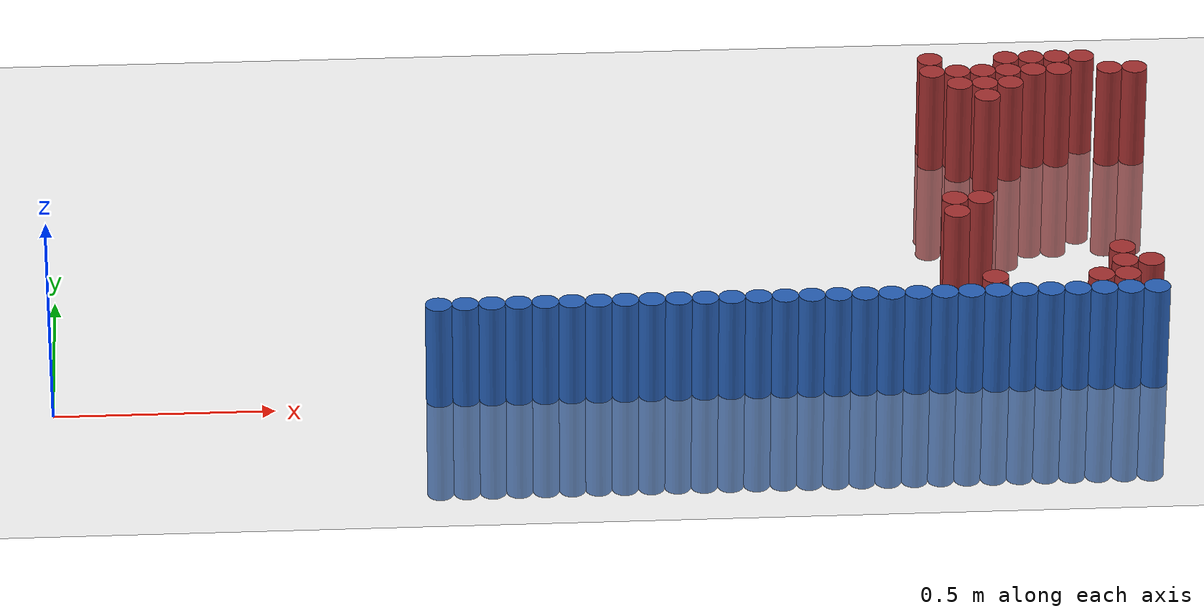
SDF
<sdf version="1.6">
 <world name="default">
  <model name="ground_plane">
   <static>1</static>
   <link name="link">
    <collision name="collision">
     <geometry><plane><normal>0 0 1</normal><size>100 100</size></plane></geometry>
     <surface><friction><ode><mu>100</mu><mu2>50</mu2></ode></friction></surface>
    </collision>
    <visual name="visual">
     <cast_shadows>0</cast_shadows>
     <geometry><plane><normal>0 0 1</normal><size>100 100</size></plane></geometry>
     <material>
      <script><uri>file://media/materials/scripts/gazebo.material</uri><name>Gazebo/Grey</name></script>
     </material>
    </visual>
   </link>
  </model>
  <model name="unit_cylinder_55">
   <static>1</static>
   <pose>0.870000 0.030000 0.000000 0.000000 0.000000 0.000000</pose>
   <link name="link">
    <inertial>
     <mass>1</mass>
     <inertia><ixx>0.145833</ixx><ixy>0</ixy><ixz>0</ixz><iyy>0.145833</iyy><iyz>0</iyz><izz>0.125</izz></inertia>
    </inertial>
    <collision name="collision">
     <geometry><cylinder><radius>0.030000</radius><length>0.5</length></cylinder></geometry>
    </collision>
    <visual name="visual">
     <geometry><cylinder><radius>0.030000</radius><length>0.5</length></cylinder></geometry>
     <material>
      <ambient>0.152000 0.379000 0.720000 1</ambient>
      <diffuse>0.152000 0.379000 0.720000 1</diffuse>
     </material>
     <material>
      <script><name>Gazebo/Grey</name><uri>file://media/materials/scripts/gazebo.material</uri></script>
     </material>
    </visual>
   </link>
  </model>
  <model name="unit_cylinder_57">
   <static>1</static>
   <pose>0.930000 0.030000 0.000000 0.000000 0.000000 0.000000</pose>
   <link name="link">
    <inertial>
     <mass>1</mass>
     <inertia><ixx>0.145833</ixx><ixy>0</ixy><ixz>0</ixz><iyy>0.145833</iyy><iyz>0</iyz><izz>0.125</izz></inertia>
    </inertial>
    <collision name="collision">
     <geometry><cylinder><radius>0.030000</radius><length>0.5</length></cylinder></geometry>
    </collision>
    <visual name="visual">
     <geometry><cylinder><radius>0.030000</radius><length>0.5</length></cylinder></geometry>
     <material>
      <ambient>0.152000 0.379000 0.720000 1</ambient>
      <diffuse>0.152000 0.379000 0.720000 1</diffuse>
     </material>
     <material>
      <script><name>Gazebo/Grey</name><uri>file://media/materials/scripts/gazebo.material</uri></script>
     </material>
    </visual>
   </link>
  </model>
  <model name="unit_cylinder_59">
   <static>1</static>
   <pose>0.990000 0.030000 0.000000 0.000000 0.000000 0.000000</pose>
   <link name="link">
    <inertial>
     <mass>1</mass>
     <inertia><ixx>0.145833</ixx><ixy>0</ixy><ixz>0</ixz><iyy>0.145833</iyy><iyz>0</iyz><izz>0.125</izz></inertia>
    </inertial>
    <collision name="collision">
     <geometry><cylinder><radius>0.030000</radius><length>0.5</length></cylinder></geometry>
    </collision>
    <visual name="visual">
     <geometry><cylinder><radius>0.030000</radius><length>0.5</length></cylinder></geometry>
     <material>
      <ambient>0.152000 0.379000 0.720000 1</ambient>
      <diffuse>0.152000 0.379000 0.720000 1</diffuse>
     </material>
     <material>
      <script><name>Gazebo/Grey</name><uri>file://media/materials/scripts/gazebo.material</uri></script>
     </material>
    </visual>
   </link>
  </model>
  <model name="unit_cylinder_61">
   <static>1</static>
   <pose>1.050000 0.030000 0.000000 0.000000 0.000000 0.000000</pose>
   <link name="link">
    <inertial>
     <mass>1</mass>
     <inertia><ixx>0.145833</ixx><ixy>0</ixy><ixz>0</ixz><iyy>0.145833</iyy><iyz>0</iyz><izz>0.125</izz></inertia>
    </inertial>
    <collision name="collision">
     <geometry><cylinder><radius>0.030000</radius><length>0.5</length></cylinder></geometry>
    </collision>
    <visual name="visual">
     <geometry><cylinder><radius>0.030000</radius><length>0.5</length></cylinder></geometry>
     <material>
      <ambient>0.152000 0.379000 0.720000 1</ambient>
      <diffuse>0.152000 0.379000 0.720000 1</diffuse>
     </material>
     <material>
      <script><name>Gazebo/Grey</name><uri>file://media/materials/scripts/gazebo.material</uri></script>
     </material>
    </visual>
   </link>
  </model>
  <model name="unit_cylinder_63">
   <static>1</static>
   <pose>1.110000 0.030000 0.000000 0.000000 0.000000 0.000000</pose>
   <link name="link">
    <inertial>
     <mass>1</mass>
     <inertia><ixx>0.145833</ixx><ixy>0</ixy><ixz>0</ixz><iyy>0.145833</iyy><iyz>0</iyz><izz>0.125</izz></inertia>
    </inertial>
    <collision name="collision">
     <geometry><cylinder><radius>0.030000</radius><length>0.5</length></cylinder></geometry>
    </collision>
    <visual name="visual">
     <geometry><cylinder><radius>0.030000</radius><length>0.5</length></cylinder></geometry>
     <material>
      <ambient>0.152000 0.379000 0.720000 1</ambient>
      <diffuse>0.152000 0.379000 0.720000 1</diffuse>
     </material>
     <material>
      <script><name>Gazebo/Grey</name><uri>file://media/materials/scripts/gazebo.material</uri></script>
     </material>
    </visual>
   </link>
  </model>
  <model name="unit_cylinder_65">
   <static>1</static>
   <pose>1.170000 0.030000 0.000000 0.000000 0.000000 0.000000</pose>
   <link name="link">
    <inertial>
     <mass>1</mass>
     <inertia><ixx>0.145833</ixx><ixy>0</ixy><ixz>0</ixz><iyy>0.145833</iyy><iyz>0</iyz><izz>0.125</izz></inertia>
    </inertial>
    <collision name="collision">
     <geometry><cylinder><radius>0.030000</radius><length>0.5</length></cylinder></geometry>
    </collision>
    <visual name="visual">
     <geometry><cylinder><radius>0.030000</radius><length>0.5</length></cylinder></geometry>
     <material>
      <ambient>0.152000 0.379000 0.720000 1</ambient>
      <diffuse>0.152000 0.379000 0.720000 1</diffuse>
     </material>
     <material>
      <script><name>Gazebo/Grey</name><uri>file://media/materials/scripts/gazebo.material</uri></script>
     </material>
    </visual>
   </link>
  </model>
  <model name="unit_cylinder_67">
   <static>1</static>
   <pose>1.230000 0.030000 0.000000 0.000000 0.000000 0.000000</pose>
   <link name="link">
    <inertial>
     <mass>1</mass>
     <inertia><ixx>0.145833</ixx><ixy>0</ixy><ixz>0</ixz><iyy>0.145833</iyy><iyz>0</iyz><izz>0.125</izz></inertia>
    </inertial>
    <collision name="collision">
     <geometry><cylinder><radius>0.030000</radius><length>0.5</length></cylinder></geometry>
    </collision>
    <visual name="visual">
     <geometry><cylinder><radius>0.030000</radius><length>0.5</length></cylinder></geometry>
     <material>
      <ambient>0.152000 0.379000 0.720000 1</ambient>
      <diffuse>0.152000 0.379000 0.720000 1</diffuse>
     </material>
     <material>
      <script><name>Gazebo/Grey</name><uri>file://media/materials/scripts/gazebo.material</uri></script>
     </material>
    </visual>
   </link>
  </model>
  <model name="unit_cylinder_69">
   <static>1</static>
   <pose>1.290000 0.030000 0.000000 0.000000 0.000000 0.000000</pose>
   <link name="link">
    <inertial>
     <mass>1</mass>
     <inertia><ixx>0.145833</ixx><ixy>0</ixy><ixz>0</ixz><iyy>0.145833</iyy><iyz>0</iyz><izz>0.125</izz></inertia>
    </inertial>
    <collision name="collision">
     <geometry><cylinder><radius>0.030000</radius><length>0.5</length></cylinder></geometry>
    </collision>
    <visual name="visual">
     <geometry><cylinder><radius>0.030000</radius><length>0.5</length></cylinder></geometry>
     <material>
      <ambient>0.152000 0.379000 0.720000 1</ambient>
      <diffuse>0.152000 0.379000 0.720000 1</diffuse>
     </material>
     <material>
      <script><name>Gazebo/Grey</name><uri>file://media/materials/scripts/gazebo.material</uri></script>
     </material>
    </visual>
   </link>
  </model>
  <model name="unit_cylinder_71">
   <static>1</static>
   <pose>1.350000 0.030000 0.000000 0.000000 0.000000 0.000000</pose>
   <link name="link">
    <inertial>
     <mass>1</mass>
     <inertia><ixx>0.145833</ixx><ixy>0</ixy><ixz>0</ixz><iyy>0.145833</iyy><iyz>0</iyz><izz>0.125</izz></inertia>
    </inertial>
    <collision name="collision">
     <geometry><cylinder><radius>0.030000</radius><length>0.5</length></cylinder></geometry>
    </collision>
    <visual name="visual">
     <geometry><cylinder><radius>0.030000</radius><length>0.5</length></cylinder></geometry>
     <material>
      <ambient>0.152000 0.379000 0.720000 1</ambient>
      <diffuse>0.152000 0.379000 0.720000 1</diffuse>
     </material>
     <material>
      <script><name>Gazebo/Grey</name><uri>file://media/materials/scripts/gazebo.material</uri></script>
     </material>
    </visual>
   </link>
  </model>
  <model name="unit_cylinder_73">
   <static>1</static>
   <pose>1.410000 0.030000 0.000000 0.000000 0.000000 0.000000</pose>
   <link name="link">
    <inertial>
     <mass>1</mass>
     <inertia><ixx>0.145833</ixx><ixy>0</ixy><ixz>0</ixz><iyy>0.145833</iyy><iyz>0</iyz><izz>0.125</izz></inertia>
    </inertial>
    <collision name="collision">
     <geometry><cylinder><radius>0.030000</radius><length>0.5</length></cylinder></geometry>
    </collision>
    <visual name="visual">
     <geometry><cylinder><radius>0.030000</radius><length>0.5</length></cylinder></geometry>
     <material>
      <ambient>0.152000 0.379000 0.720000 1</ambient>
      <diffuse>0.152000 0.379000 0.720000 1</diffuse>
     </material>
     <material>
      <script><name>Gazebo/Grey</name><uri>file://media/materials/scripts/gazebo.material</uri></script>
     </material>
    </visual>
   </link>
  </model>
  <model name="unit_cylinder_75">
   <static>1</static>
   <pose>1.470000 0.030000 0.000000 0.000000 0.000000 0.000000</pose>
   <link name="link">
    <inertial>
     <mass>1</mass>
     <inertia><ixx>0.145833</ixx><ixy>0</ixy><ixz>0</ixz><iyy>0.145833</iyy><iyz>0</iyz><izz>0.125</izz></inertia>
    </inertial>
    <collision name="collision">
     <geometry><cylinder><radius>0.030000</radius><length>0.5</length></cylinder></geometry>
    </collision>
    <visual name="visual">
     <geometry><cylinder><radius>0.030000</radius><length>0.5</length></cylinder></geometry>
     <material>
      <ambient>0.152000 0.379000 0.720000 1</ambient>
      <diffuse>0.152000 0.379000 0.720000 1</diffuse>
     </material>
     <material>
      <script><name>Gazebo/Grey</name><uri>file://media/materials/scripts/gazebo.material</uri></script>
     </material>
    </visual>
   </link>
  </model>
  <model name="unit_cylinder_77">
   <static>1</static>
   <pose>1.530000 0.030000 0.000000 0.000000 0.000000 0.000000</pose>
   <link name="link">
    <inertial>
     <mass>1</mass>
     <inertia><ixx>0.145833</ixx><ixy>0</ixy><ixz>0</ixz><iyy>0.145833</iyy><iyz>0</iyz><izz>0.125</izz></inertia>
    </inertial>
    <collision name="collision">
     <geometry><cylinder><radius>0.030000</radius><length>0.5</length></cylinder></geometry>
    </collision>
    <visual name="visual">
     <geometry><cylinder><radius>0.030000</radius><length>0.5</length></cylinder></geometry>
     <material>
      <ambient>0.152000 0.379000 0.720000 1</ambient>
      <diffuse>0.152000 0.379000 0.720000 1</diffuse>
     </material>
     <material>
      <script><name>Gazebo/Grey</name><uri>file://media/materials/scripts/gazebo.material</uri></script>
     </material>
    </visual>
   </link>
  </model>
  <model name="unit_cylinder_79">
   <static>1</static>
   <pose>1.590000 0.030000 0.000000 0.000000 0.000000 0.000000</pose>
   <link name="link">
    <inertial>
     <mass>1</mass>
     <inertia><ixx>0.145833</ixx><ixy>0</ixy><ixz>0</ixz><iyy>0.145833</iyy><iyz>0</iyz><izz>0.125</izz></inertia>
    </inertial>
    <collision name="collision">
     <geometry><cylinder><radius>0.030000</radius><length>0.5</length></cylinder></geometry>
    </collision>
    <visual name="visual">
     <geometry><cylinder><radius>0.030000</radius><length>0.5</length></cylinder></geometry>
     <material>
      <ambient>0.152000 0.379000 0.720000 1</ambient>
      <diffuse>0.152000 0.379000 0.720000 1</diffuse>
     </material>
     <material>
      <script><name>Gazebo/Grey</name><uri>file://media/materials/scripts/gazebo.material</uri></script>
     </material>
    </visual>
   </link>
  </model>
  <model name="unit_cylinder_81">
   <static>1</static>
   <pose>1.650000 0.030000 0.000000 0.000000 0.000000 0.000000</pose>
   <link name="link">
    <inertial>
     <mass>1</mass>
     <inertia><ixx>0.145833</ixx><ixy>0</ixy><ixz>0</ixz><iyy>0.145833</iyy><iyz>0</iyz><izz>0.125</izz></inertia>
    </inertial>
    <collision name="collision">
     <geometry><cylinder><radius>0.030000</radius><length>0.5</length></cylinder></geometry>
    </collision>
    <visual name="visual">
     <geometry><cylinder><radius>0.030000</radius><length>0.5</length></cylinder></geometry>
     <material>
      <ambient>0.152000 0.379000 0.720000 1</ambient>
      <diffuse>0.152000 0.379000 0.720000 1</diffuse>
     </material>
     <material>
      <script><name>Gazebo/Grey</name><uri>file://media/materials/scripts/gazebo.material</uri></script>
     </material>
    </visual>
   </link>
  </model>
  <model name="unit_cylinder_83">
   <static>1</static>
   <pose>1.710000 0.030000 0.000000 0.000000 0.000000 0.000000</pose>
   <link name="link">
    <inertial>
     <mass>1</mass>
     <inertia><ixx>0.145833</ixx><ixy>0</ixy><ixz>0</ixz><iyy>0.145833</iyy><iyz>0</iyz><izz>0.125</izz></inertia>
    </inertial>
    <collision name="collision">
     <geometry><cylinder><radius>0.030000</radius><length>0.5</length></cylinder></geometry>
    </collision>
    <visual name="visual">
     <geometry><cylinder><radius>0.030000</radius><length>0.5</length></cylinder></geometry>
     <material>
      <ambient>0.152000 0.379000 0.720000 1</ambient>
      <diffuse>0.152000 0.379000 0.720000 1</diffuse>
     </material>
     <material>
      <script><name>Gazebo/Grey</name><uri>file://media/materials/scripts/gazebo.material</uri></script>
     </material>
    </visual>
   </link>
  </model>
  <model name="unit_cylinder_85">
   <static>1</static>
   <pose>1.770000 0.030000 0.000000 0.000000 0.000000 0.000000</pose>
   <link name="link">
    <inertial>
     <mass>1</mass>
     <inertia><ixx>0.145833</ixx><ixy>0</ixy><ixz>0</ixz><iyy>0.145833</iyy><iyz>0</iyz><izz>0.125</izz></inertia>
    </inertial>
    <collision name="collision">
     <geometry><cylinder><radius>0.030000</radius><length>0.5</length></cylinder></geometry>
    </collision>
    <visual name="visual">
     <geometry><cylinder><radius>0.030000</radius><length>0.5</length></cylinder></geometry>
     <material>
      <ambient>0.152000 0.379000 0.720000 1</ambient>
      <diffuse>0.152000 0.379000 0.720000 1</diffuse>
     </material>
     <material>
      <script><name>Gazebo/Grey</name><uri>file://media/materials/scripts/gazebo.material</uri></script>
     </material>
    </visual>
   </link>
  </model>
  <model name="unit_cylinder_87">
   <static>1</static>
   <pose>1.830000 0.030000 0.000000 0.000000 0.000000 0.000000</pose>
   <link name="link">
    <inertial>
     <mass>1</mass>
     <inertia><ixx>0.145833</ixx><ixy>0</ixy><ixz>0</ixz><iyy>0.145833</iyy><iyz>0</iyz><izz>0.125</izz></inertia>
    </inertial>
    <collision name="collision">
     <geometry><cylinder><radius>0.030000</radius><length>0.5</length></cylinder></geometry>
    </collision>
    <visual name="visual">
     <geometry><cylinder><radius>0.030000</radius><length>0.5</length></cylinder></geometry>
     <material>
      <ambient>0.152000 0.379000 0.720000 1</ambient>
      <diffuse>0.152000 0.379000 0.720000 1</diffuse>
     </material>
     <material>
      <script><name>Gazebo/Grey</name><uri>file://media/materials/scripts/gazebo.material</uri></script>
     </material>
    </visual>
   </link>
  </model>
  <model name="unit_cylinder_89">
   <static>1</static>
   <pose>1.890000 0.030000 0.000000 0.000000 0.000000 0.000000</pose>
   <link name="link">
    <inertial>
     <mass>1</mass>
     <inertia><ixx>0.145833</ixx><ixy>0</ixy><ixz>0</ixz><iyy>0.145833</iyy><iyz>0</iyz><izz>0.125</izz></inertia>
    </inertial>
    <collision name="collision">
     <geometry><cylinder><radius>0.030000</radius><length>0.5</length></cylinder></geometry>
    </collision>
    <visual name="visual">
     <geometry><cylinder><radius>0.030000</radius><length>0.5</length></cylinder></geometry>
     <material>
      <ambient>0.152000 0.379000 0.720000 1</ambient>
      <diffuse>0.152000 0.379000 0.720000 1</diffuse>
     </material>
     <material>
      <script><name>Gazebo/Grey</name><uri>file://media/materials/scripts/gazebo.material</uri></script>
     </material>
    </visual>
   </link>
  </model>
  <model name="unit_cylinder_91">
   <static>1</static>
   <pose>1.950000 0.030000 0.000000 0.000000 0.000000 0.000000</pose>
   <link name="link">
    <inertial>
     <mass>1</mass>
     <inertia><ixx>0.145833</ixx><ixy>0</ixy><ixz>0</ixz><iyy>0.145833</iyy><iyz>0</iyz><izz>0.125</izz></inertia>
    </inertial>
    <collision name="collision">
     <geometry><cylinder><radius>0.030000</radius><length>0.5</length></cylinder></geometry>
    </collision>
    <visual name="visual">
     <geometry><cylinder><radius>0.030000</radius><length>0.5</length></cylinder></geometry>
     <material>
      <ambient>0.152000 0.379000 0.720000 1</ambient>
      <diffuse>0.152000 0.379000 0.720000 1</diffuse>
     </material>
     <material>
      <script><name>Gazebo/Grey</name><uri>file://media/materials/scripts/gazebo.material</uri></script>
     </material>
    </visual>
   </link>
  </model>
  <model name="unit_cylinder_93">
   <static>1</static>
   <pose>2.010000 0.030000 0.000000 0.000000 0.000000 0.000000</pose>
   <link name="link">
    <inertial>
     <mass>1</mass>
     <inertia><ixx>0.145833</ixx><ixy>0</ixy><ixz>0</ixz><iyy>0.145833</iyy><iyz>0</iyz><izz>0.125</izz></inertia>
    </inertial>
    <collision name="collision">
     <geometry><cylinder><radius>0.030000</radius><length>0.5</length></cylinder></geometry>
    </collision>
    <visual name="visual">
     <geometry><cylinder><radius>0.030000</radius><length>0.5</length></cylinder></geometry>
     <material>
      <ambient>0.152000 0.379000 0.720000 1</ambient>
      <diffuse>0.152000 0.379000 0.720000 1</diffuse>
     </material>
     <material>
      <script><name>Gazebo/Grey</name><uri>file://media/materials/scripts/gazebo.material</uri></script>
     </material>
    </visual>
   </link>
  </model>
  <model name="unit_cylinder_206">
   <static>1</static>
   <pose>2.070000 1.110000 0.000000 0.000000 0.000000 0.000000</pose>
   <link name="link">
    <inertial>
     <mass>1</mass>
     <inertia><ixx>0.145833</ixx><ixy>0</ixy><ixz>0</ixz><iyy>0.145833</iyy><iyz>0</iyz><izz>0.125</izz></inertia>
    </inertial>
    <collision name="collision">
     <geometry><cylinder><radius>0.030000</radius><length>0.5</length></cylinder></geometry>
    </collision>
    <visual name="visual">
     <geometry><cylinder><radius>0.030000</radius><length>0.5</length></cylinder></geometry>
     <material>
      <ambient>0.648000 0.192000 0.192000 1</ambient>
      <diffuse>0.648000 0.192000 0.192000 1</diffuse>
     </material>
     <material>
      <script><name>Gazebo/Grey</name><uri>file://media/materials/scripts/gazebo.material</uri></script>
     </material>
    </visual>
   </link>
  </model>
  <model name="unit_cylinder_207">
   <static>1</static>
   <pose>2.250000 1.110000 0.000000 0.000000 0.000000 0.000000</pose>
   <link name="link">
    <inertial>
     <mass>1</mass>
     <inertia><ixx>0.145833</ixx><ixy>0</ixy><ixz>0</ixz><iyy>0.145833</iyy><iyz>0</iyz><izz>0.125</izz></inertia>
    </inertial>
    <collision name="collision">
     <geometry><cylinder><radius>0.030000</radius><length>0.5</length></cylinder></geometry>
    </collision>
    <visual name="visual">
     <geometry><cylinder><radius>0.030000</radius><length>0.5</length></cylinder></geometry>
     <material>
      <ambient>0.648000 0.192000 0.192000 1</ambient>
      <diffuse>0.648000 0.192000 0.192000 1</diffuse>
     </material>
     <material>
      <script><name>Gazebo/Grey</name><uri>file://media/materials/scripts/gazebo.material</uri></script>
     </material>
    </visual>
   </link>
  </model>
  <model name="unit_cylinder_208">
   <static>1</static>
   <pose>2.310000 1.110000 0.000000 0.000000 0.000000 0.000000</pose>
   <link name="link">
    <inertial>
     <mass>1</mass>
     <inertia><ixx>0.145833</ixx><ixy>0</ixy><ixz>0</ixz><iyy>0.145833</iyy><iyz>0</iyz><izz>0.125</izz></inertia>
    </inertial>
    <collision name="collision">
     <geometry><cylinder><radius>0.030000</radius><length>0.5</length></cylinder></geometry>
    </collision>
    <visual name="visual">
     <geometry><cylinder><radius>0.030000</radius><length>0.5</length></cylinder></geometry>
     <material>
      <ambient>0.648000 0.192000 0.192000 1</ambient>
      <diffuse>0.648000 0.192000 0.192000 1</diffuse>
     </material>
     <material>
      <script><name>Gazebo/Grey</name><uri>file://media/materials/scripts/gazebo.material</uri></script>
     </material>
    </visual>
   </link>
  </model>
  <model name="unit_cylinder_209">
   <static>1</static>
   <pose>2.370000 1.110000 0.000000 0.000000 0.000000 0.000000</pose>
   <link name="link">
    <inertial>
     <mass>1</mass>
     <inertia><ixx>0.145833</ixx><ixy>0</ixy><ixz>0</ixz><iyy>0.145833</iyy><iyz>0</iyz><izz>0.125</izz></inertia>
    </inertial>
    <collision name="collision">
     <geometry><cylinder><radius>0.030000</radius><length>0.5</length></cylinder></geometry>
    </collision>
    <visual name="visual">
     <geometry><cylinder><radius>0.030000</radius><length>0.5</length></cylinder></geometry>
     <material>
      <ambient>0.648000 0.192000 0.192000 1</ambient>
      <diffuse>0.648000 0.192000 0.192000 1</diffuse>
     </material>
     <material>
      <script><name>Gazebo/Grey</name><uri>file://media/materials/scripts/gazebo.material</uri></script>
     </material>
    </visual>
   </link>
  </model>
  <model name="unit_cylinder_210">
   <static>1</static>
   <pose>2.430000 1.110000 0.000000 0.000000 0.000000 0.000000</pose>
   <link name="link">
    <inertial>
     <mass>1</mass>
     <inertia><ixx>0.145833</ixx><ixy>0</ixy><ixz>0</ixz><iyy>0.145833</iyy><iyz>0</iyz><izz>0.125</izz></inertia>
    </inertial>
    <collision name="collision">
     <geometry><cylinder><radius>0.030000</radius><length>0.5</length></cylinder></geometry>
    </collision>
    <visual name="visual">
     <geometry><cylinder><radius>0.030000</radius><length>0.5</length></cylinder></geometry>
     <material>
      <ambient>0.648000 0.192000 0.192000 1</ambient>
      <diffuse>0.648000 0.192000 0.192000 1</diffuse>
     </material>
     <material>
      <script><name>Gazebo/Grey</name><uri>file://media/materials/scripts/gazebo.material</uri></script>
     </material>
    </visual>
   </link>
  </model>
  <model name="unit_cylinder_216">
   <static>1</static>
   <pose>2.070000 1.050000 0.000000 0.000000 0.000000 0.000000</pose>
   <link name="link">
    <inertial>
     <mass>1</mass>
     <inertia><ixx>0.145833</ixx><ixy>0</ixy><ixz>0</ixz><iyy>0.145833</iyy><iyz>0</iyz><izz>0.125</izz></inertia>
    </inertial>
    <collision name="collision">
     <geometry><cylinder><radius>0.030000</radius><length>0.5</length></cylinder></geometry>
    </collision>
    <visual name="visual">
     <geometry><cylinder><radius>0.030000</radius><length>0.5</length></cylinder></geometry>
     <material>
      <ambient>0.648000 0.192000 0.192000 1</ambient>
      <diffuse>0.648000 0.192000 0.192000 1</diffuse>
     </material>
     <material>
      <script><name>Gazebo/Grey</name><uri>file://media/materials/scripts/gazebo.material</uri></script>
     </material>
    </visual>
   </link>
  </model>
  <model name="unit_cylinder_217">
   <static>1</static>
   <pose>2.130000 1.050000 0.000000 0.000000 0.000000 0.000000</pose>
   <link name="link">
    <inertial>
     <mass>1</mass>
     <inertia><ixx>0.145833</ixx><ixy>0</ixy><ixz>0</ixz><iyy>0.145833</iyy><iyz>0</iyz><izz>0.125</izz></inertia>
    </inertial>
    <collision name="collision">
     <geometry><cylinder><radius>0.030000</radius><length>0.5</length></cylinder></geometry>
    </collision>
    <visual name="visual">
     <geometry><cylinder><radius>0.030000</radius><length>0.5</length></cylinder></geometry>
     <material>
      <ambient>0.648000 0.192000 0.192000 1</ambient>
      <diffuse>0.648000 0.192000 0.192000 1</diffuse>
     </material>
     <material>
      <script><name>Gazebo/Grey</name><uri>file://media/materials/scripts/gazebo.material</uri></script>
     </material>
    </visual>
   </link>
  </model>
  <model name="unit_cylinder_218">
   <static>1</static>
   <pose>2.190000 1.050000 0.000000 0.000000 0.000000 0.000000</pose>
   <link name="link">
    <inertial>
     <mass>1</mass>
     <inertia><ixx>0.145833</ixx><ixy>0</ixy><ixz>0</ixz><iyy>0.145833</iyy><iyz>0</iyz><izz>0.125</izz></inertia>
    </inertial>
    <collision name="collision">
     <geometry><cylinder><radius>0.030000</radius><length>0.5</length></cylinder></geometry>
    </collision>
    <visual name="visual">
     <geometry><cylinder><radius>0.030000</radius><length>0.5</length></cylinder></geometry>
     <material>
      <ambient>0.648000 0.192000 0.192000 1</ambient>
      <diffuse>0.648000 0.192000 0.192000 1</diffuse>
     </material>
     <material>
      <script><name>Gazebo/Grey</name><uri>file://media/materials/scripts/gazebo.material</uri></script>
     </material>
    </visual>
   </link>
  </model>
  <model name="unit_cylinder_219">
   <static>1</static>
   <pose>2.250000 1.050000 0.000000 0.000000 0.000000 0.000000</pose>
   <link name="link">
    <inertial>
     <mass>1</mass>
     <inertia><ixx>0.145833</ixx><ixy>0</ixy><ixz>0</ixz><iyy>0.145833</iyy><iyz>0</iyz><izz>0.125</izz></inertia>
    </inertial>
    <collision name="collision">
     <geometry><cylinder><radius>0.030000</radius><length>0.5</length></cylinder></geometry>
    </collision>
    <visual name="visual">
     <geometry><cylinder><radius>0.030000</radius><length>0.5</length></cylinder></geometry>
     <material>
      <ambient>0.648000 0.192000 0.192000 1</ambient>
      <diffuse>0.648000 0.192000 0.192000 1</diffuse>
     </material>
     <material>
      <script><name>Gazebo/Grey</name><uri>file://media/materials/scripts/gazebo.material</uri></script>
     </material>
    </visual>
   </link>
  </model>
  <model name="unit_cylinder_220">
   <static>1</static>
   <pose>2.310000 1.050000 0.000000 0.000000 0.000000 0.000000</pose>
   <link name="link">
    <inertial>
     <mass>1</mass>
     <inertia><ixx>0.145833</ixx><ixy>0</ixy><ixz>0</ixz><iyy>0.145833</iyy><iyz>0</iyz><izz>0.125</izz></inertia>
    </inertial>
    <collision name="collision">
     <geometry><cylinder><radius>0.030000</radius><length>0.5</length></cylinder></geometry>
    </collision>
    <visual name="visual">
     <geometry><cylinder><radius>0.030000</radius><length>0.5</length></cylinder></geometry>
     <material>
      <ambient>0.648000 0.192000 0.192000 1</ambient>
      <diffuse>0.648000 0.192000 0.192000 1</diffuse>
     </material>
     <material>
      <script><name>Gazebo/Grey</name><uri>file://media/materials/scripts/gazebo.material</uri></script>
     </material>
    </visual>
   </link>
  </model>
  <model name="unit_cylinder_221">
   <static>1</static>
   <pose>2.370000 1.050000 0.000000 0.000000 0.000000 0.000000</pose>
   <link name="link">
    <inertial>
     <mass>1</mass>
     <inertia><ixx>0.145833</ixx><ixy>0</ixy><ixz>0</ixz><iyy>0.145833</iyy><iyz>0</iyz><izz>0.125</izz></inertia>
    </inertial>
    <collision name="collision">
     <geometry><cylinder><radius>0.030000</radius><length>0.5</length></cylinder></geometry>
    </collision>
    <visual name="visual">
     <geometry><cylinder><radius>0.030000</radius><length>0.5</length></cylinder></geometry>
     <material>
      <ambient>0.648000 0.192000 0.192000 1</ambient>
      <diffuse>0.648000 0.192000 0.192000 1</diffuse>
     </material>
     <material>
      <script><name>Gazebo/Grey</name><uri>file://media/materials/scripts/gazebo.material</uri></script>
     </material>
    </visual>
   </link>
  </model>
  <model name="unit_cylinder_222">
   <static>1</static>
   <pose>2.490000 1.050000 0.000000 0.000000 0.000000 0.000000</pose>
   <link name="link">
    <inertial>
     <mass>1</mass>
     <inertia><ixx>0.145833</ixx><ixy>0</ixy><ixz>0</ixz><iyy>0.145833</iyy><iyz>0</iyz><izz>0.125</izz></inertia>
    </inertial>
    <collision name="collision">
     <geometry><cylinder><radius>0.030000</radius><length>0.5</length></cylinder></geometry>
    </collision>
    <visual name="visual">
     <geometry><cylinder><radius>0.030000</radius><length>0.5</length></cylinder></geometry>
     <material>
      <ambient>0.648000 0.192000 0.192000 1</ambient>
      <diffuse>0.648000 0.192000 0.192000 1</diffuse>
     </material>
     <material>
      <script><name>Gazebo/Grey</name><uri>file://media/materials/scripts/gazebo.material</uri></script>
     </material>
    </visual>
   </link>
  </model>
  <model name="unit_cylinder_223">
   <static>1</static>
   <pose>2.550000 1.050000 0.000000 0.000000 0.000000 0.000000</pose>
   <link name="link">
    <inertial>
     <mass>1</mass>
     <inertia><ixx>0.145833</ixx><ixy>0</ixy><ixz>0</ixz><iyy>0.145833</iyy><iyz>0</iyz><izz>0.125</izz></inertia>
    </inertial>
    <collision name="collision">
     <geometry><cylinder><radius>0.030000</radius><length>0.5</length></cylinder></geometry>
    </collision>
    <visual name="visual">
     <geometry><cylinder><radius>0.030000</radius><length>0.5</length></cylinder></geometry>
     <material>
      <ambient>0.648000 0.192000 0.192000 1</ambient>
      <diffuse>0.648000 0.192000 0.192000 1</diffuse>
     </material>
     <material>
      <script><name>Gazebo/Grey</name><uri>file://media/materials/scripts/gazebo.material</uri></script>
     </material>
    </visual>
   </link>
  </model>
  <model name="unit_cylinder_226">
   <static>1</static>
   <pose>2.130000 0.990000 0.000000 0.000000 0.000000 0.000000</pose>
   <link name="link">
    <inertial>
     <mass>1</mass>
     <inertia><ixx>0.145833</ixx><ixy>0</ixy><ixz>0</ixz><iyy>0.145833</iyy><iyz>0</iyz><izz>0.125</izz></inertia>
    </inertial>
    <collision name="collision">
     <geometry><cylinder><radius>0.030000</radius><length>0.5</length></cylinder></geometry>
    </collision>
    <visual name="visual">
     <geometry><cylinder><radius>0.030000</radius><length>0.5</length></cylinder></geometry>
     <material>
      <ambient>0.648000 0.192000 0.192000 1</ambient>
      <diffuse>0.648000 0.192000 0.192000 1</diffuse>
     </material>
     <material>
      <script><name>Gazebo/Grey</name><uri>file://media/materials/scripts/gazebo.material</uri></script>
     </material>
    </visual>
   </link>
  </model>
  <model name="unit_cylinder_227">
   <static>1</static>
   <pose>2.190000 0.990000 0.000000 0.000000 0.000000 0.000000</pose>
   <link name="link">
    <inertial>
     <mass>1</mass>
     <inertia><ixx>0.145833</ixx><ixy>0</ixy><ixz>0</ixz><iyy>0.145833</iyy><iyz>0</iyz><izz>0.125</izz></inertia>
    </inertial>
    <collision name="collision">
     <geometry><cylinder><radius>0.030000</radius><length>0.5</length></cylinder></geometry>
    </collision>
    <visual name="visual">
     <geometry><cylinder><radius>0.030000</radius><length>0.5</length></cylinder></geometry>
     <material>
      <ambient>0.648000 0.192000 0.192000 1</ambient>
      <diffuse>0.648000 0.192000 0.192000 1</diffuse>
     </material>
     <material>
      <script><name>Gazebo/Grey</name><uri>file://media/materials/scripts/gazebo.material</uri></script>
     </material>
    </visual>
   </link>
  </model>
  <model name="unit_cylinder_228">
   <static>1</static>
   <pose>2.250000 0.990000 0.000000 0.000000 0.000000 0.000000</pose>
   <link name="link">
    <inertial>
     <mass>1</mass>
     <inertia><ixx>0.145833</ixx><ixy>0</ixy><ixz>0</ixz><iyy>0.145833</iyy><iyz>0</iyz><izz>0.125</izz></inertia>
    </inertial>
    <collision name="collision">
     <geometry><cylinder><radius>0.030000</radius><length>0.5</length></cylinder></geometry>
    </collision>
    <visual name="visual">
     <geometry><cylinder><radius>0.030000</radius><length>0.5</length></cylinder></geometry>
     <material>
      <ambient>0.648000 0.192000 0.192000 1</ambient>
      <diffuse>0.648000 0.192000 0.192000 1</diffuse>
     </material>
     <material>
      <script><name>Gazebo/Grey</name><uri>file://media/materials/scripts/gazebo.material</uri></script>
     </material>
    </visual>
   </link>
  </model>
  <model name="unit_cylinder_229">
   <static>1</static>
   <pose>2.190000 0.930000 0.000000 0.000000 0.000000 0.000000</pose>
   <link name="link">
    <inertial>
     <mass>1</mass>
     <inertia><ixx>0.145833</ixx><ixy>0</ixy><ixz>0</ixz><iyy>0.145833</iyy><iyz>0</iyz><izz>0.125</izz></inertia>
    </inertial>
    <collision name="collision">
     <geometry><cylinder><radius>0.030000</radius><length>0.5</length></cylinder></geometry>
    </collision>
    <visual name="visual">
     <geometry><cylinder><radius>0.030000</radius><length>0.5</length></cylinder></geometry>
     <material>
      <ambient>0.648000 0.192000 0.192000 1</ambient>
      <diffuse>0.648000 0.192000 0.192000 1</diffuse>
     </material>
     <material>
      <script><name>Gazebo/Grey</name><uri>file://media/materials/scripts/gazebo.material</uri></script>
     </material>
    </visual>
   </link>
  </model>
  <model name="unit_cylinder_238">
   <static>1</static>
   <pose>2.070000 0.450000 0.000000 0.000000 0.000000 0.000000</pose>
   <link name="link">
    <inertial>
     <mass>1</mass>
     <inertia><ixx>0.145833</ixx><ixy>0</ixy><ixz>0</ixz><iyy>0.145833</iyy><iyz>0</iyz><izz>0.125</izz></inertia>
    </inertial>
    <collision name="collision">
     <geometry><cylinder><radius>0.030000</radius><length>0.5</length></cylinder></geometry>
    </collision>
    <visual name="visual">
     <geometry><cylinder><radius>0.030000</radius><length>0.5</length></cylinder></geometry>
     <material>
      <ambient>0.648000 0.192000 0.192000 1</ambient>
      <diffuse>0.648000 0.192000 0.192000 1</diffuse>
     </material>
     <material>
      <script><name>Gazebo/Grey</name><uri>file://media/materials/scripts/gazebo.material</uri></script>
     </material>
    </visual>
   </link>
  </model>
  <model name="unit_cylinder_239">
   <static>1</static>
   <pose>2.130000 0.450000 0.000000 0.000000 0.000000 0.000000</pose>
   <link name="link">
    <inertial>
     <mass>1</mass>
     <inertia><ixx>0.145833</ixx><ixy>0</ixy><ixz>0</ixz><iyy>0.145833</iyy><iyz>0</iyz><izz>0.125</izz></inertia>
    </inertial>
    <collision name="collision">
     <geometry><cylinder><radius>0.030000</radius><length>0.5</length></cylinder></geometry>
    </collision>
    <visual name="visual">
     <geometry><cylinder><radius>0.030000</radius><length>0.5</length></cylinder></geometry>
     <material>
      <ambient>0.648000 0.192000 0.192000 1</ambient>
      <diffuse>0.648000 0.192000 0.192000 1</diffuse>
     </material>
     <material>
      <script><name>Gazebo/Grey</name><uri>file://media/materials/scripts/gazebo.material</uri></script>
     </material>
    </visual>
   </link>
  </model>
  <model name="unit_cylinder_242">
   <static>1</static>
   <pose>2.070000 0.390000 0.000000 0.000000 0.000000 0.000000</pose>
   <link name="link">
    <inertial>
     <mass>1</mass>
     <inertia><ixx>0.145833</ixx><ixy>0</ixy><ixz>0</ixz><iyy>0.145833</iyy><iyz>0</iyz><izz>0.125</izz></inertia>
    </inertial>
    <collision name="collision">
     <geometry><cylinder><radius>0.030000</radius><length>0.5</length></cylinder></geometry>
    </collision>
    <visual name="visual">
     <geometry><cylinder><radius>0.030000</radius><length>0.5</length></cylinder></geometry>
     <material>
      <ambient>0.648000 0.192000 0.192000 1</ambient>
      <diffuse>0.648000 0.192000 0.192000 1</diffuse>
     </material>
     <material>
      <script><name>Gazebo/Grey</name><uri>file://media/materials/scripts/gazebo.material</uri></script>
     </material>
    </visual>
   </link>
  </model>
  <model name="unit_cylinder_255">
   <static>1</static>
   <pose>2.430000 0.210000 0.000000 0.000000 0.000000 0.000000</pose>
   <link name="link">
    <inertial>
     <mass>1</mass>
     <inertia><ixx>0.145833</ixx><ixy>0</ixy><ixz>0</ixz><iyy>0.145833</iyy><iyz>0</iyz><izz>0.125</izz></inertia>
    </inertial>
    <collision name="collision">
     <geometry><cylinder><radius>0.030000</radius><length>0.5</length></cylinder></geometry>
    </collision>
    <visual name="visual">
     <geometry><cylinder><radius>0.030000</radius><length>0.5</length></cylinder></geometry>
     <material>
      <ambient>0.648000 0.192000 0.192000 1</ambient>
      <diffuse>0.648000 0.192000 0.192000 1</diffuse>
     </material>
     <material>
      <script><name>Gazebo/Grey</name><uri>file://media/materials/scripts/gazebo.material</uri></script>
     </material>
    </visual>
   </link>
  </model>
  <model name="unit_cylinder_264">
   <static>1</static>
   <pose>2.430000 0.150000 0.000000 0.000000 0.000000 0.000000</pose>
   <link name="link">
    <inertial>
     <mass>1</mass>
     <inertia><ixx>0.145833</ixx><ixy>0</ixy><ixz>0</ixz><iyy>0.145833</iyy><iyz>0</iyz><izz>0.125</izz></inertia>
    </inertial>
    <collision name="collision">
     <geometry><cylinder><radius>0.030000</radius><length>0.5</length></cylinder></geometry>
    </collision>
    <visual name="visual">
     <geometry><cylinder><radius>0.030000</radius><length>0.5</length></cylinder></geometry>
     <material>
      <ambient>0.648000 0.192000 0.192000 1</ambient>
      <diffuse>0.648000 0.192000 0.192000 1</diffuse>
     </material>
     <material>
      <script><name>Gazebo/Grey</name><uri>file://media/materials/scripts/gazebo.material</uri></script>
     </material>
    </visual>
   </link>
  </model>
  <model name="unit_cylinder_265">
   <static>1</static>
   <pose>2.490000 0.150000 0.000000 0.000000 0.000000 0.000000</pose>
   <link name="link">
    <inertial>
     <mass>1</mass>
     <inertia><ixx>0.145833</ixx><ixy>0</ixy><ixz>0</ixz><iyy>0.145833</iyy><iyz>0</iyz><izz>0.125</izz></inertia>
    </inertial>
    <collision name="collision">
     <geometry><cylinder><radius>0.030000</radius><length>0.5</length></cylinder></geometry>
    </collision>
    <visual name="visual">
     <geometry><cylinder><radius>0.030000</radius><length>0.5</length></cylinder></geometry>
     <material>
      <ambient>0.648000 0.192000 0.192000 1</ambient>
      <diffuse>0.648000 0.192000 0.192000 1</diffuse>
     </material>
     <material>
      <script><name>Gazebo/Grey</name><uri>file://media/materials/scripts/gazebo.material</uri></script>
     </material>
    </visual>
   </link>
  </model>
  <model name="unit_cylinder_276">
   <static>1</static>
   <pose>2.130000 0.090000 0.000000 0.000000 0.000000 0.000000</pose>
   <link name="link">
    <inertial>
     <mass>1</mass>
     <inertia><ixx>0.145833</ixx><ixy>0</ixy><ixz>0</ixz><iyy>0.145833</iyy><iyz>0</iyz><izz>0.125</izz></inertia>
    </inertial>
    <collision name="collision">
     <geometry><cylinder><radius>0.030000</radius><length>0.5</length></cylinder></geometry>
    </collision>
    <visual name="visual">
     <geometry><cylinder><radius>0.030000</radius><length>0.5</length></cylinder></geometry>
     <material>
      <ambient>0.648000 0.192000 0.192000 1</ambient>
      <diffuse>0.648000 0.192000 0.192000 1</diffuse>
     </material>
     <material>
      <script><name>Gazebo/Grey</name><uri>file://media/materials/scripts/gazebo.material</uri></script>
     </material>
    </visual>
   </link>
  </model>
  <model name="unit_cylinder_277">
   <static>1</static>
   <pose>2.370000 0.090000 0.000000 0.000000 0.000000 0.000000</pose>
   <link name="link">
    <inertial>
     <mass>1</mass>
     <inertia><ixx>0.145833</ixx><ixy>0</ixy><ixz>0</ixz><iyy>0.145833</iyy><iyz>0</iyz><izz>0.125</izz></inertia>
    </inertial>
    <collision name="collision">
     <geometry><cylinder><radius>0.030000</radius><length>0.5</length></cylinder></geometry>
    </collision>
    <visual name="visual">
     <geometry><cylinder><radius>0.030000</radius><length>0.5</length></cylinder></geometry>
     <material>
      <ambient>0.648000 0.192000 0.192000 1</ambient>
      <diffuse>0.648000 0.192000 0.192000 1</diffuse>
     </material>
     <material>
      <script><name>Gazebo/Grey</name><uri>file://media/materials/scripts/gazebo.material</uri></script>
     </material>
    </visual>
   </link>
  </model>
  <model name="unit_cylinder_278">
   <static>1</static>
   <pose>2.430000 0.090000 0.000000 0.000000 0.000000 0.000000</pose>
   <link name="link">
    <inertial>
     <mass>1</mass>
     <inertia><ixx>0.145833</ixx><ixy>0</ixy><ixz>0</ixz><iyy>0.145833</iyy><iyz>0</iyz><izz>0.125</izz></inertia>
    </inertial>
    <collision name="collision">
     <geometry><cylinder><radius>0.030000</radius><length>0.5</length></cylinder></geometry>
    </collision>
    <visual name="visual">
     <geometry><cylinder><radius>0.030000</radius><length>0.5</length></cylinder></geometry>
     <material>
      <ambient>0.648000 0.192000 0.192000 1</ambient>
      <diffuse>0.648000 0.192000 0.192000 1</diffuse>
     </material>
     <material>
      <script><name>Gazebo/Grey</name><uri>file://media/materials/scripts/gazebo.material</uri></script>
     </material>
    </visual>
   </link>
  </model>
  <model name="unit_cylinder_293">
   <static>1</static>
   <pose>2.070000 0.030000 0.000000 0.000000 0.000000 0.000000</pose>
   <link name="link">
    <inertial>
     <mass>1</mass>
     <inertia><ixx>0.145833</ixx><ixy>0</ixy><ixz>0</ixz><iyy>0.145833</iyy><iyz>0</iyz><izz>0.125</izz></inertia>
    </inertial>
    <collision name="collision">
     <geometry><cylinder><radius>0.030000</radius><length>0.5</length></cylinder></geometry>
    </collision>
    <visual name="visual">
     <geometry><cylinder><radius>0.030000</radius><length>0.5</length></cylinder></geometry>
     <material>
      <ambient>0.152000 0.379000 0.720000 1</ambient>
      <diffuse>0.152000 0.379000 0.720000 1</diffuse>
     </material>
     <material>
      <script><name>Gazebo/Grey</name><uri>file://media/materials/scripts/gazebo.material</uri></script>
     </material>
    </visual>
   </link>
  </model>
  <model name="unit_cylinder_294">
   <static>1</static>
   <pose>2.130000 0.030000 0.000000 0.000000 0.000000 0.000000</pose>
   <link name="link">
    <inertial>
     <mass>1</mass>
     <inertia><ixx>0.145833</ixx><ixy>0</ixy><ixz>0</ixz><iyy>0.145833</iyy><iyz>0</iyz><izz>0.125</izz></inertia>
    </inertial>
    <collision name="collision">
     <geometry><cylinder><radius>0.030000</radius><length>0.5</length></cylinder></geometry>
    </collision>
    <visual name="visual">
     <geometry><cylinder><radius>0.030000</radius><length>0.5</length></cylinder></geometry>
     <material>
      <ambient>0.152000 0.379000 0.720000 1</ambient>
      <diffuse>0.152000 0.379000 0.720000 1</diffuse>
     </material>
     <material>
      <script><name>Gazebo/Grey</name><uri>file://media/materials/scripts/gazebo.material</uri></script>
     </material>
    </visual>
   </link>
  </model>
  <model name="unit_cylinder_295">
   <static>1</static>
   <pose>2.190000 0.030000 0.000000 0.000000 0.000000 0.000000</pose>
   <link name="link">
    <inertial>
     <mass>1</mass>
     <inertia><ixx>0.145833</ixx><ixy>0</ixy><ixz>0</ixz><iyy>0.145833</iyy><iyz>0</iyz><izz>0.125</izz></inertia>
    </inertial>
    <collision name="collision">
     <geometry><cylinder><radius>0.030000</radius><length>0.5</length></cylinder></geometry>
    </collision>
    <visual name="visual">
     <geometry><cylinder><radius>0.030000</radius><length>0.5</length></cylinder></geometry>
     <material>
      <ambient>0.152000 0.379000 0.720000 1</ambient>
      <diffuse>0.152000 0.379000 0.720000 1</diffuse>
     </material>
     <material>
      <script><name>Gazebo/Grey</name><uri>file://media/materials/scripts/gazebo.material</uri></script>
     </material>
    </visual>
   </link>
  </model>
  <model name="unit_cylinder_296">
   <static>1</static>
   <pose>2.250000 0.030000 0.000000 0.000000 0.000000 0.000000</pose>
   <link name="link">
    <inertial>
     <mass>1</mass>
     <inertia><ixx>0.145833</ixx><ixy>0</ixy><ixz>0</ixz><iyy>0.145833</iyy><iyz>0</iyz><izz>0.125</izz></inertia>
    </inertial>
    <collision name="collision">
     <geometry><cylinder><radius>0.030000</radius><length>0.5</length></cylinder></geometry>
    </collision>
    <visual name="visual">
     <geometry><cylinder><radius>0.030000</radius><length>0.5</length></cylinder></geometry>
     <material>
      <ambient>0.152000 0.379000 0.720000 1</ambient>
      <diffuse>0.152000 0.379000 0.720000 1</diffuse>
     </material>
     <material>
      <script><name>Gazebo/Grey</name><uri>file://media/materials/scripts/gazebo.material</uri></script>
     </material>
    </visual>
   </link>
  </model>
  <model name="unit_cylinder_297">
   <static>1</static>
   <pose>2.310000 0.030000 0.000000 0.000000 0.000000 0.000000</pose>
   <link name="link">
    <inertial>
     <mass>1</mass>
     <inertia><ixx>0.145833</ixx><ixy>0</ixy><ixz>0</ixz><iyy>0.145833</iyy><iyz>0</iyz><izz>0.125</izz></inertia>
    </inertial>
    <collision name="collision">
     <geometry><cylinder><radius>0.030000</radius><length>0.5</length></cylinder></geometry>
    </collision>
    <visual name="visual">
     <geometry><cylinder><radius>0.030000</radius><length>0.5</length></cylinder></geometry>
     <material>
      <ambient>0.152000 0.379000 0.720000 1</ambient>
      <diffuse>0.152000 0.379000 0.720000 1</diffuse>
     </material>
     <material>
      <script><name>Gazebo/Grey</name><uri>file://media/materials/scripts/gazebo.material</uri></script>
     </material>
    </visual>
   </link>
  </model>
  <model name="unit_cylinder_298">
   <static>1</static>
   <pose>2.370000 0.030000 0.000000 0.000000 0.000000 0.000000</pose>
   <link name="link">
    <inertial>
     <mass>1</mass>
     <inertia><ixx>0.145833</ixx><ixy>0</ixy><ixz>0</ixz><iyy>0.145833</iyy><iyz>0</iyz><izz>0.125</izz></inertia>
    </inertial>
    <collision name="collision">
     <geometry><cylinder><radius>0.030000</radius><length>0.5</length></cylinder></geometry>
    </collision>
    <visual name="visual">
     <geometry><cylinder><radius>0.030000</radius><length>0.5</length></cylinder></geometry>
     <material>
      <ambient>0.152000 0.379000 0.720000 1</ambient>
      <diffuse>0.152000 0.379000 0.720000 1</diffuse>
     </material>
     <material>
      <script><name>Gazebo/Grey</name><uri>file://media/materials/scripts/gazebo.material</uri></script>
     </material>
    </visual>
   </link>
  </model>
  <model name="unit_cylinder_299">
   <static>1</static>
   <pose>2.430000 0.030000 0.000000 0.000000 0.000000 0.000000</pose>
   <link name="link">
    <inertial>
     <mass>1</mass>
     <inertia><ixx>0.145833</ixx><ixy>0</ixy><ixz>0</ixz><iyy>0.145833</iyy><iyz>0</iyz><izz>0.125</izz></inertia>
    </inertial>
    <collision name="collision">
     <geometry><cylinder><radius>0.030000</radius><length>0.5</length></cylinder></geometry>
    </collision>
    <visual name="visual">
     <geometry><cylinder><radius>0.030000</radius><length>0.5</length></cylinder></geometry>
     <material>
      <ambient>0.152000 0.379000 0.720000 1</ambient>
      <diffuse>0.152000 0.379000 0.720000 1</diffuse>
     </material>
     <material>
      <script><name>Gazebo/Grey</name><uri>file://media/materials/scripts/gazebo.material</uri></script>
     </material>
    </visual>
   </link>
  </model>
  <model name="unit_cylinder_300">
   <static>1</static>
   <pose>2.490000 0.030000 0.000000 0.000000 0.000000 0.000000</pose>
   <link name="link">
    <inertial>
     <mass>1</mass>
     <inertia><ixx>0.145833</ixx><ixy>0</ixy><ixz>0</ixz><iyy>0.145833</iyy><iyz>0</iyz><izz>0.125</izz></inertia>
    </inertial>
    <collision name="collision">
     <geometry><cylinder><radius>0.030000</radius><length>0.5</length></cylinder></geometry>
    </collision>
    <visual name="visual">
     <geometry><cylinder><radius>0.030000</radius><length>0.5</length></cylinder></geometry>
     <material>
      <ambient>0.152000 0.379000 0.720000 1</ambient>
      <diffuse>0.152000 0.379000 0.720000 1</diffuse>
     </material>
     <material>
      <script><name>Gazebo/Grey</name><uri>file://media/materials/scripts/gazebo.material</uri></script>
     </material>
    </visual>
   </link>
  </model>
 </world>
</sdf>
